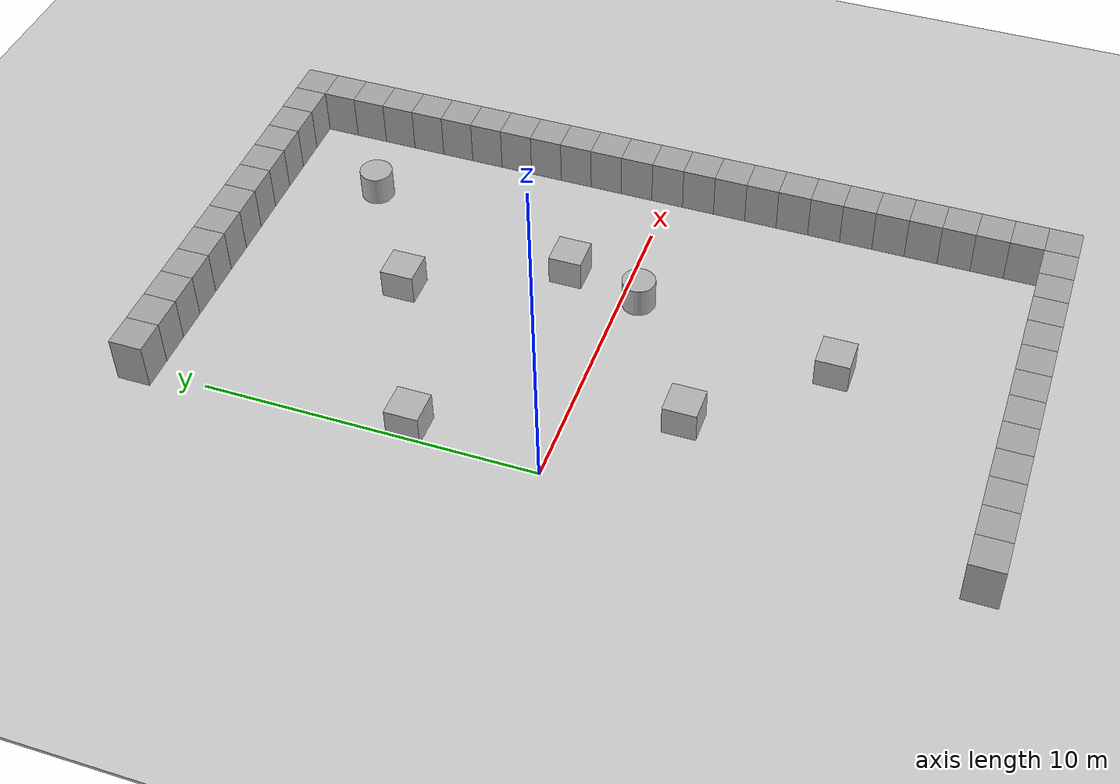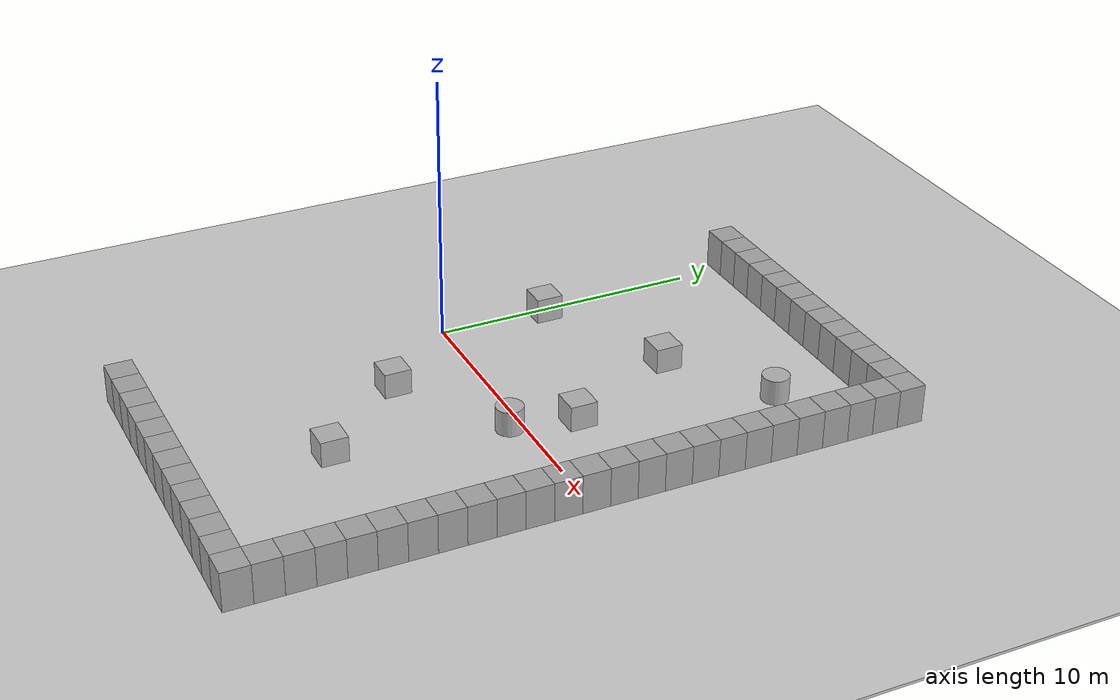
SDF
<sdf version="1.10">
 <world name="empty">
  <model name="ground_plane">
   <static>true</static>
   <link name="link">
    <collision name="collision">
     <geometry><plane><normal>0 0 1</normal><size>100 100</size></plane></geometry>
    </collision>
    <visual name="visual">
     <geometry><plane><normal>0 0 1</normal><size>100 100</size></plane></geometry>
     <material>
      <ambient>0.800000012 0.800000012 0.800000012 1</ambient>
      <diffuse>0.800000012 0.800000012 0.800000012 1</diffuse>
      <specular>0.800000012 0.800000012 0.800000012 1</specular>
     </material>
    </visual>
    <inertial>
     <mass>1</mass>
     <inertia><ixx>1</ixx><ixy>0</ixy><ixz>0</ixz><iyy>1</iyy><iyz>0</iyz><izz>1</izz></inertia>
    </inertial>
   </link>
  </model>
  <model name="box_0">
   <pose>6.0330559122916796 -6.6597615887634198 0.5 0 0 0</pose>
   <link name="box_link">
    <inertial>
     <inertia><ixx>0.16666</ixx><ixy>0</ixy><ixz>0</ixz><iyy>0.16666</iyy><iyz>0</iyz><izz>0.16666</izz></inertia>
     <mass>1</mass>
    </inertial>
    <collision name="box_collision"><geometry><box><size>1 1 1</size></box></geometry></collision>
    <visual name="box_visual">
     <geometry><box><size>1 1 1</size></box></geometry>
     <material>
      <ambient>0.300000012 0.300000012 0.300000012 1</ambient>
      <diffuse>0.699999988 0.699999988 0.699999988 1</diffuse>
      <specular>1 1 1 1</specular>
     </material>
    </visual>
   </link>
   <static>false</static>
  </model>
  <model name="box_1">
   <pose>5.4431378589945663 6.2501473488965873 0.5 0 0 0</pose>
   <link name="box_link">
    <inertial>
     <inertia><ixx>0.16666</ixx><ixy>0</ixy><ixz>0</ixz><iyy>0.16666</iyy><iyz>0</iyz><izz>0.16666</izz></inertia>
     <mass>1</mass>
    </inertial>
    <collision name="box_collision"><geometry><box><size>1 1 1</size></box></geometry></collision>
    <visual name="box_visual">
     <geometry><box><size>1 1 1</size></box></geometry>
     <material>
      <ambient>0.300000012 0.300000012 0.300000012 1</ambient>
      <diffuse>0.699999988 0.699999988 0.699999988 1</diffuse>
      <specular>1 1 1 1</specular>
     </material>
    </visual>
   </link>
   <static>false</static>
  </model>
  <model name="ground_plane_1">
   <static>true</static>
   <link name="link">
    <collision name="collision">
     <geometry><plane><normal>0 0 1</normal><size>100 100</size></plane></geometry>
    </collision>
    <visual name="visual">
     <geometry><plane><normal>0 0 1</normal><size>100 100</size></plane></geometry>
     <material>
      <ambient>0.800000012 0.800000012 0.800000012 1</ambient>
      <diffuse>0.800000012 0.800000012 0.800000012 1</diffuse>
      <specular>0.800000012 0.800000012 0.800000012 1</specular>
     </material>
    </visual>
   </link>
   <pose>5.8856477409981078 6.8674950587699826 0 0 0 0</pose>
  </model>
  <model name="box_1_2">
   <pose>0.41984665652474096 3.952707647567669 0.5 0 0 0</pose>
   <link name="box_link">
    <inertial>
     <inertia><ixx>0.16666</ixx><ixy>0</ixy><ixz>0</ixz><iyy>0.16666</iyy><iyz>0</iyz><izz>0.16666</izz></inertia>
     <mass>1</mass>
    </inertial>
    <collision name="box_collision"><geometry><box><size>1 1 1</size></box></geometry></collision>
    <visual name="box_visual">
     <geometry><box><size>1 1 1</size></box></geometry>
     <material>
      <ambient>0.300000012 0.300000012 0.300000012 1</ambient>
      <diffuse>0.699999988 0.699999988 0.699999988 1</diffuse>
      <specular>1 1 1 1</specular>
     </material>
    </visual>
   </link>
   <static>false</static>
  </model>
  <model name="box_1_3">
   <pose>2.9450058535421952 -3.1553020894889903 0.5 0 0 0</pose>
   <link name="box_link">
    <inertial>
     <inertia><ixx>0.16666</ixx><ixy>0</ixy><ixz>0</ixz><iyy>0.16666</iyy><iyz>0</iyz><izz>0.16666</izz></inertia>
     <mass>1</mass>
    </inertial>
    <collision name="box_collision"><geometry><box><size>1 1 1</size></box></geometry></collision>
    <visual name="box_visual">
     <geometry><box><size>1 1 1</size></box></geometry>
     <material>
      <ambient>0.300000012 0.300000012 0.300000012 1</ambient>
      <diffuse>0.699999988 0.699999988 0.699999988 1</diffuse>
      <specular>1 1 1 1</specular>
     </material>
    </visual>
   </link>
   <static>false</static>
  </model>
  <model name="box_1_6">
   <pose>7.5589287411919539 1.7904647676761927 0.5 0 0 0</pose>
   <link name="box_link">
    <inertial>
     <inertia><ixx>0.16666</ixx><ixy>0</ixy><ixz>0</ixz><iyy>0.16666</iyy><iyz>0</iyz><izz>0.16666</izz></inertia>
     <mass>1</mass>
    </inertial>
    <collision name="box_collision"><geometry><box><size>1 1 1</size></box></geometry></collision>
    <visual name="box_visual">
     <geometry><box><size>1 1 1</size></box></geometry>
     <material>
      <ambient>0.300000012 0.300000012 0.300000012 1</ambient>
      <diffuse>0.699999988 0.699999988 0.699999988 1</diffuse>
      <specular>1 1 1 1</specular>
     </material>
    </visual>
   </link>
   <static>false</static>
  </model>
  <model name="cylinder_4">
   <pose>9.0908475155126158 8.7140515046431091 0.5 0 0 0</pose>
   <link name="cylinder_link">
    <inertial>
     <inertia>
      <ixx>0.14580000000000001</ixx>
      <ixy>0</ixy>
      <ixz>0</ixz>
      <iyy>0.14580000000000001</iyy>
      <iyz>0</iyz>
      <izz>0.125</izz>
     </inertia>
     <mass>1</mass>
    </inertial>
    <collision name="cylinder_collision">
     <geometry><cylinder><radius>0.5</radius><length>1</length></cylinder></geometry>
    </collision>
    <visual name="cylinder_visual">
     <geometry><cylinder><radius>0.5</radius><length>1</length></cylinder></geometry>
     <material>
      <ambient>0.300000012 0.300000012 0.300000012 1</ambient>
      <diffuse>0.699999988 0.699999988 0.699999988 1</diffuse>
      <specular>1 1 1 1</specular>
     </material>
    </visual>
   </link>
   <static>false</static>
  </model>
  <model name="cylinder_6">
   <pose>7.0176003287278821 -0.52406950820931186 0.5 0 0 0</pose>
   <link name="cylinder_link">
    <inertial>
     <inertia>
      <ixx>0.14580000000000001</ixx>
      <ixy>0</ixy>
      <ixz>0</ixz>
      <iyy>0.14580000000000001</iyy>
      <iyz>0</iyz>
      <izz>0.125</izz>
     </inertia>
     <mass>1</mass>
    </inertial>
    <collision name="cylinder_collision">
     <geometry><cylinder><radius>0.5</radius><length>1</length></cylinder></geometry>
    </collision>
    <visual name="cylinder_visual">
     <geometry><cylinder><radius>0.5</radius><length>1</length></cylinder></geometry>
     <material>
      <ambient>0.300000012 0.300000012 0.300000012 1</ambient>
      <diffuse>0.699999988 0.699999988 0.699999988 1</diffuse>
      <specular>1 1 1 1</specular>
     </material>
    </visual>
   </link>
   <static>false</static>
  </model>
  <model name="wall_box_47">
   <static>true</static>
   <pose>0.0 -12.0 0.75 0 0 0</pose>
   <link name="link">
    <collision name="collision"><geometry><box><size>1.0 1.0 1.5</size></box></geometry></collision>
    <visual name="visual">
     <geometry><box><size>1.0 1.0 1.5</size></box></geometry>
     <material>
      <ambient>0.55 0.55 0.55 1</ambient>
      <diffuse>0.65 0.65 0.65 1</diffuse>
      <specular>0.3 0.3 0.3 1</specular>
     </material>
    </visual>
   </link>
  </model>
  <model name="wall_box_48">
   <static>true</static>
   <pose>0.0 12.0 0.75 0 0 0</pose>
   <link name="link">
    <collision name="collision"><geometry><box><size>1.0 1.0 1.5</size></box></geometry></collision>
    <visual name="visual">
     <geometry><box><size>1.0 1.0 1.5</size></box></geometry>
     <material>
      <ambient>0.55 0.55 0.55 1</ambient>
      <diffuse>0.65 0.65 0.65 1</diffuse>
      <specular>0.3 0.3 0.3 1</specular>
     </material>
    </visual>
   </link>
  </model>
  <model name="wall_box_49">
   <static>true</static>
   <pose>1.0 -12.0 0.75 0 0 0</pose>
   <link name="link">
    <collision name="collision"><geometry><box><size>1.0 1.0 1.5</size></box></geometry></collision>
    <visual name="visual">
     <geometry><box><size>1.0 1.0 1.5</size></box></geometry>
     <material>
      <ambient>0.55 0.55 0.55 1</ambient>
      <diffuse>0.65 0.65 0.65 1</diffuse>
      <specular>0.3 0.3 0.3 1</specular>
     </material>
    </visual>
   </link>
  </model>
  <model name="wall_box_50">
   <static>true</static>
   <pose>1.0 12.0 0.75 0 0 0</pose>
   <link name="link">
    <collision name="collision"><geometry><box><size>1.0 1.0 1.5</size></box></geometry></collision>
    <visual name="visual">
     <geometry><box><size>1.0 1.0 1.5</size></box></geometry>
     <material>
      <ambient>0.55 0.55 0.55 1</ambient>
      <diffuse>0.65 0.65 0.65 1</diffuse>
      <specular>0.3 0.3 0.3 1</specular>
     </material>
    </visual>
   </link>
  </model>
  <model name="wall_box_51">
   <static>true</static>
   <pose>2.0 -12.0 0.75 0 0 0</pose>
   <link name="link">
    <collision name="collision"><geometry><box><size>1.0 1.0 1.5</size></box></geometry></collision>
    <visual name="visual">
     <geometry><box><size>1.0 1.0 1.5</size></box></geometry>
     <material>
      <ambient>0.55 0.55 0.55 1</ambient>
      <diffuse>0.65 0.65 0.65 1</diffuse>
      <specular>0.3 0.3 0.3 1</specular>
     </material>
    </visual>
   </link>
  </model>
  <model name="wall_box_52">
   <static>true</static>
   <pose>2.0 12.0 0.75 0 0 0</pose>
   <link name="link">
    <collision name="collision"><geometry><box><size>1.0 1.0 1.5</size></box></geometry></collision>
    <visual name="visual">
     <geometry><box><size>1.0 1.0 1.5</size></box></geometry>
     <material>
      <ambient>0.55 0.55 0.55 1</ambient>
      <diffuse>0.65 0.65 0.65 1</diffuse>
      <specular>0.3 0.3 0.3 1</specular>
     </material>
    </visual>
   </link>
  </model>
  <model name="wall_box_53">
   <static>true</static>
   <pose>3.0 -12.0 0.75 0 0 0</pose>
   <link name="link">
    <collision name="collision"><geometry><box><size>1.0 1.0 1.5</size></box></geometry></collision>
    <visual name="visual">
     <geometry><box><size>1.0 1.0 1.5</size></box></geometry>
     <material>
      <ambient>0.55 0.55 0.55 1</ambient>
      <diffuse>0.65 0.65 0.65 1</diffuse>
      <specular>0.3 0.3 0.3 1</specular>
     </material>
    </visual>
   </link>
  </model>
  <model name="wall_box_54">
   <static>true</static>
   <pose>3.0 12.0 0.75 0 0 0</pose>
   <link name="link">
    <collision name="collision"><geometry><box><size>1.0 1.0 1.5</size></box></geometry></collision>
    <visual name="visual">
     <geometry><box><size>1.0 1.0 1.5</size></box></geometry>
     <material>
      <ambient>0.55 0.55 0.55 1</ambient>
      <diffuse>0.65 0.65 0.65 1</diffuse>
      <specular>0.3 0.3 0.3 1</specular>
     </material>
    </visual>
   </link>
  </model>
  <model name="wall_box_55">
   <static>true</static>
   <pose>4.0 -12.0 0.75 0 0 0</pose>
   <link name="link">
    <collision name="collision"><geometry><box><size>1.0 1.0 1.5</size></box></geometry></collision>
    <visual name="visual">
     <geometry><box><size>1.0 1.0 1.5</size></box></geometry>
     <material>
      <ambient>0.55 0.55 0.55 1</ambient>
      <diffuse>0.65 0.65 0.65 1</diffuse>
      <specular>0.3 0.3 0.3 1</specular>
     </material>
    </visual>
   </link>
  </model>
  <model name="wall_box_56">
   <static>true</static>
   <pose>4.0 12.0 0.75 0 0 0</pose>
   <link name="link">
    <collision name="collision"><geometry><box><size>1.0 1.0 1.5</size></box></geometry></collision>
    <visual name="visual">
     <geometry><box><size>1.0 1.0 1.5</size></box></geometry>
     <material>
      <ambient>0.55 0.55 0.55 1</ambient>
      <diffuse>0.65 0.65 0.65 1</diffuse>
      <specular>0.3 0.3 0.3 1</specular>
     </material>
    </visual>
   </link>
  </model>
  <model name="wall_box_57">
   <static>true</static>
   <pose>5.0 -12.0 0.75 0 0 0</pose>
   <link name="link">
    <collision name="collision"><geometry><box><size>1.0 1.0 1.5</size></box></geometry></collision>
    <visual name="visual">
     <geometry><box><size>1.0 1.0 1.5</size></box></geometry>
     <material>
      <ambient>0.55 0.55 0.55 1</ambient>
      <diffuse>0.65 0.65 0.65 1</diffuse>
      <specular>0.3 0.3 0.3 1</specular>
     </material>
    </visual>
   </link>
  </model>
  <model name="wall_box_58">
   <static>true</static>
   <pose>5.0 12.0 0.75 0 0 0</pose>
   <link name="link">
    <collision name="collision"><geometry><box><size>1.0 1.0 1.5</size></box></geometry></collision>
    <visual name="visual">
     <geometry><box><size>1.0 1.0 1.5</size></box></geometry>
     <material>
      <ambient>0.55 0.55 0.55 1</ambient>
      <diffuse>0.65 0.65 0.65 1</diffuse>
      <specular>0.3 0.3 0.3 1</specular>
     </material>
    </visual>
   </link>
  </model>
  <model name="wall_box_59">
   <static>true</static>
   <pose>6.0 -12.0 0.75 0 0 0</pose>
   <link name="link">
    <collision name="collision"><geometry><box><size>1.0 1.0 1.5</size></box></geometry></collision>
    <visual name="visual">
     <geometry><box><size>1.0 1.0 1.5</size></box></geometry>
     <material>
      <ambient>0.55 0.55 0.55 1</ambient>
      <diffuse>0.65 0.65 0.65 1</diffuse>
      <specular>0.3 0.3 0.3 1</specular>
     </material>
    </visual>
   </link>
  </model>
  <model name="wall_box_60">
   <static>true</static>
   <pose>6.0 12.0 0.75 0 0 0</pose>
   <link name="link">
    <collision name="collision"><geometry><box><size>1.0 1.0 1.5</size></box></geometry></collision>
    <visual name="visual">
     <geometry><box><size>1.0 1.0 1.5</size></box></geometry>
     <material>
      <ambient>0.55 0.55 0.55 1</ambient>
      <diffuse>0.65 0.65 0.65 1</diffuse>
      <specular>0.3 0.3 0.3 1</specular>
     </material>
    </visual>
   </link>
  </model>
  <model name="wall_box_61">
   <static>true</static>
   <pose>7.0 -12.0 0.75 0 0 0</pose>
   <link name="link">
    <collision name="collision"><geometry><box><size>1.0 1.0 1.5</size></box></geometry></collision>
    <visual name="visual">
     <geometry><box><size>1.0 1.0 1.5</size></box></geometry>
     <material>
      <ambient>0.55 0.55 0.55 1</ambient>
      <diffuse>0.65 0.65 0.65 1</diffuse>
      <specular>0.3 0.3 0.3 1</specular>
     </material>
    </visual>
   </link>
  </model>
  <model name="wall_box_62">
   <static>true</static>
   <pose>7.0 12.0 0.75 0 0 0</pose>
   <link name="link">
    <collision name="collision"><geometry><box><size>1.0 1.0 1.5</size></box></geometry></collision>
    <visual name="visual">
     <geometry><box><size>1.0 1.0 1.5</size></box></geometry>
     <material>
      <ambient>0.55 0.55 0.55 1</ambient>
      <diffuse>0.65 0.65 0.65 1</diffuse>
      <specular>0.3 0.3 0.3 1</specular>
     </material>
    </visual>
   </link>
  </model>
  <model name="wall_box_63">
   <static>true</static>
   <pose>8.0 -12.0 0.75 0 0 0</pose>
   <link name="link">
    <collision name="collision"><geometry><box><size>1.0 1.0 1.5</size></box></geometry></collision>
    <visual name="visual">
     <geometry><box><size>1.0 1.0 1.5</size></box></geometry>
     <material>
      <ambient>0.55 0.55 0.55 1</ambient>
      <diffuse>0.65 0.65 0.65 1</diffuse>
      <specular>0.3 0.3 0.3 1</specular>
     </material>
    </visual>
   </link>
  </model>
  <model name="wall_box_64">
   <static>true</static>
   <pose>8.0 12.0 0.75 0 0 0</pose>
   <link name="link">
    <collision name="collision"><geometry><box><size>1.0 1.0 1.5</size></box></geometry></collision>
    <visual name="visual">
     <geometry><box><size>1.0 1.0 1.5</size></box></geometry>
     <material>
      <ambient>0.55 0.55 0.55 1</ambient>
      <diffuse>0.65 0.65 0.65 1</diffuse>
      <specular>0.3 0.3 0.3 1</specular>
     </material>
    </visual>
   </link>
  </model>
  <model name="wall_box_65">
   <static>true</static>
   <pose>9.0 -12.0 0.75 0 0 0</pose>
   <link name="link">
    <collision name="collision"><geometry><box><size>1.0 1.0 1.5</size></box></geometry></collision>
    <visual name="visual">
     <geometry><box><size>1.0 1.0 1.5</size></box></geometry>
     <material>
      <ambient>0.55 0.55 0.55 1</ambient>
      <diffuse>0.65 0.65 0.65 1</diffuse>
      <specular>0.3 0.3 0.3 1</specular>
     </material>
    </visual>
   </link>
  </model>
  <model name="wall_box_66">
   <static>true</static>
   <pose>9.0 12.0 0.75 0 0 0</pose>
   <link name="link">
    <collision name="collision"><geometry><box><size>1.0 1.0 1.5</size></box></geometry></collision>
    <visual name="visual">
     <geometry><box><size>1.0 1.0 1.5</size></box></geometry>
     <material>
      <ambient>0.55 0.55 0.55 1</ambient>
      <diffuse>0.65 0.65 0.65 1</diffuse>
      <specular>0.3 0.3 0.3 1</specular>
     </material>
    </visual>
   </link>
  </model>
  <model name="wall_box_67">
   <static>true</static>
   <pose>10.0 -12.0 0.75 0 0 0</pose>
   <link name="link">
    <collision name="collision"><geometry><box><size>1.0 1.0 1.5</size></box></geometry></collision>
    <visual name="visual">
     <geometry><box><size>1.0 1.0 1.5</size></box></geometry>
     <material>
      <ambient>0.55 0.55 0.55 1</ambient>
      <diffuse>0.65 0.65 0.65 1</diffuse>
      <specular>0.3 0.3 0.3 1</specular>
     </material>
    </visual>
   </link>
  </model>
  <model name="wall_box_68">
   <static>true</static>
   <pose>10.0 12.0 0.75 0 0 0</pose>
   <link name="link">
    <collision name="collision"><geometry><box><size>1.0 1.0 1.5</size></box></geometry></collision>
    <visual name="visual">
     <geometry><box><size>1.0 1.0 1.5</size></box></geometry>
     <material>
      <ambient>0.55 0.55 0.55 1</ambient>
      <diffuse>0.65 0.65 0.65 1</diffuse>
      <specular>0.3 0.3 0.3 1</specular>
     </material>
    </visual>
   </link>
  </model>
  <model name="wall_box_69">
   <static>true</static>
   <pose>11.0 -12.0 0.75 0 0 0</pose>
   <link name="link">
    <collision name="collision"><geometry><box><size>1.0 1.0 1.5</size></box></geometry></collision>
    <visual name="visual">
     <geometry><box><size>1.0 1.0 1.5</size></box></geometry>
     <material>
      <ambient>0.55 0.55 0.55 1</ambient>
      <diffuse>0.65 0.65 0.65 1</diffuse>
      <specular>0.3 0.3 0.3 1</specular>
     </material>
    </visual>
   </link>
  </model>
  <model name="wall_box_70">
   <static>true</static>
   <pose>11.0 12.0 0.75 0 0 0</pose>
   <link name="link">
    <collision name="collision"><geometry><box><size>1.0 1.0 1.5</size></box></geometry></collision>
    <visual name="visual">
     <geometry><box><size>1.0 1.0 1.5</size></box></geometry>
     <material>
      <ambient>0.55 0.55 0.55 1</ambient>
      <diffuse>0.65 0.65 0.65 1</diffuse>
      <specular>0.3 0.3 0.3 1</specular>
     </material>
    </visual>
   </link>
  </model>
  <model name="wall_box_71">
   <static>true</static>
   <pose>12.0 -12.0 0.75 0 0 0</pose>
   <link name="link">
    <collision name="collision"><geometry><box><size>1.0 1.0 1.5</size></box></geometry></collision>
    <visual name="visual">
     <geometry><box><size>1.0 1.0 1.5</size></box></geometry>
     <material>
      <ambient>0.55 0.55 0.55 1</ambient>
      <diffuse>0.65 0.65 0.65 1</diffuse>
      <specular>0.3 0.3 0.3 1</specular>
     </material>
    </visual>
   </link>
  </model>
  <model name="wall_box_72">
   <static>true</static>
   <pose>12.0 -11.0 0.75 0 0 0</pose>
   <link name="link">
    <collision name="collision"><geometry><box><size>1.0 1.0 1.5</size></box></geometry></collision>
    <visual name="visual">
     <geometry><box><size>1.0 1.0 1.5</size></box></geometry>
     <material>
      <ambient>0.55 0.55 0.55 1</ambient>
      <diffuse>0.65 0.65 0.65 1</diffuse>
      <specular>0.3 0.3 0.3 1</specular>
     </material>
    </visual>
   </link>
  </model>
  <model name="wall_box_73">
   <static>true</static>
   <pose>12.0 -10.0 0.75 0 0 0</pose>
   <link name="link">
    <collision name="collision"><geometry><box><size>1.0 1.0 1.5</size></box></geometry></collision>
    <visual name="visual">
     <geometry><box><size>1.0 1.0 1.5</size></box></geometry>
     <material>
      <ambient>0.55 0.55 0.55 1</ambient>
      <diffuse>0.65 0.65 0.65 1</diffuse>
      <specular>0.3 0.3 0.3 1</specular>
     </material>
    </visual>
   </link>
  </model>
  <model name="wall_box_74">
   <static>true</static>
   <pose>12.0 -9.0 0.75 0 0 0</pose>
   <link name="link">
    <collision name="collision"><geometry><box><size>1.0 1.0 1.5</size></box></geometry></collision>
    <visual name="visual">
     <geometry><box><size>1.0 1.0 1.5</size></box></geometry>
     <material>
      <ambient>0.55 0.55 0.55 1</ambient>
      <diffuse>0.65 0.65 0.65 1</diffuse>
      <specular>0.3 0.3 0.3 1</specular>
     </material>
    </visual>
   </link>
  </model>
  <model name="wall_box_75">
   <static>true</static>
   <pose>12.0 -8.0 0.75 0 0 0</pose>
   <link name="link">
    <collision name="collision"><geometry><box><size>1.0 1.0 1.5</size></box></geometry></collision>
    <visual name="visual">
     <geometry><box><size>1.0 1.0 1.5</size></box></geometry>
     <material>
      <ambient>0.55 0.55 0.55 1</ambient>
      <diffuse>0.65 0.65 0.65 1</diffuse>
      <specular>0.3 0.3 0.3 1</specular>
     </material>
    </visual>
   </link>
  </model>
  <model name="wall_box_76">
   <static>true</static>
   <pose>12.0 -7.0 0.75 0 0 0</pose>
   <link name="link">
    <collision name="collision"><geometry><box><size>1.0 1.0 1.5</size></box></geometry></collision>
    <visual name="visual">
     <geometry><box><size>1.0 1.0 1.5</size></box></geometry>
     <material>
      <ambient>0.55 0.55 0.55 1</ambient>
      <diffuse>0.65 0.65 0.65 1</diffuse>
      <specular>0.3 0.3 0.3 1</specular>
     </material>
    </visual>
   </link>
  </model>
  <model name="wall_box_77">
   <static>true</static>
   <pose>12.0 -6.0 0.75 0 0 0</pose>
   <link name="link">
    <collision name="collision"><geometry><box><size>1.0 1.0 1.5</size></box></geometry></collision>
    <visual name="visual">
     <geometry><box><size>1.0 1.0 1.5</size></box></geometry>
     <material>
      <ambient>0.55 0.55 0.55 1</ambient>
      <diffuse>0.65 0.65 0.65 1</diffuse>
      <specular>0.3 0.3 0.3 1</specular>
     </material>
    </visual>
   </link>
  </model>
  <model name="wall_box_78">
   <static>true</static>
   <pose>12.0 -5.0 0.75 0 0 0</pose>
   <link name="link">
    <collision name="collision"><geometry><box><size>1.0 1.0 1.5</size></box></geometry></collision>
    <visual name="visual">
     <geometry><box><size>1.0 1.0 1.5</size></box></geometry>
     <material>
      <ambient>0.55 0.55 0.55 1</ambient>
      <diffuse>0.65 0.65 0.65 1</diffuse>
      <specular>0.3 0.3 0.3 1</specular>
     </material>
    </visual>
   </link>
  </model>
  <model name="wall_box_79">
   <static>true</static>
   <pose>12.0 -4.0 0.75 0 0 0</pose>
   <link name="link">
    <collision name="collision"><geometry><box><size>1.0 1.0 1.5</size></box></geometry></collision>
    <visual name="visual">
     <geometry><box><size>1.0 1.0 1.5</size></box></geometry>
     <material>
      <ambient>0.55 0.55 0.55 1</ambient>
      <diffuse>0.65 0.65 0.65 1</diffuse>
      <specular>0.3 0.3 0.3 1</specular>
     </material>
    </visual>
   </link>
  </model>
  <model name="wall_box_80">
   <static>true</static>
   <pose>12.0 -3.0 0.75 0 0 0</pose>
   <link name="link">
    <collision name="collision"><geometry><box><size>1.0 1.0 1.5</size></box></geometry></collision>
    <visual name="visual">
     <geometry><box><size>1.0 1.0 1.5</size></box></geometry>
     <material>
      <ambient>0.55 0.55 0.55 1</ambient>
      <diffuse>0.65 0.65 0.65 1</diffuse>
      <specular>0.3 0.3 0.3 1</specular>
     </material>
    </visual>
   </link>
  </model>
  <model name="wall_box_81">
   <static>true</static>
   <pose>12.0 -2.0 0.75 0 0 0</pose>
   <link name="link">
    <collision name="collision"><geometry><box><size>1.0 1.0 1.5</size></box></geometry></collision>
    <visual name="visual">
     <geometry><box><size>1.0 1.0 1.5</size></box></geometry>
     <material>
      <ambient>0.55 0.55 0.55 1</ambient>
      <diffuse>0.65 0.65 0.65 1</diffuse>
      <specular>0.3 0.3 0.3 1</specular>
     </material>
    </visual>
   </link>
  </model>
  <model name="wall_box_82">
   <static>true</static>
   <pose>12.0 -1.0 0.75 0 0 0</pose>
   <link name="link">
    <collision name="collision"><geometry><box><size>1.0 1.0 1.5</size></box></geometry></collision>
    <visual name="visual">
     <geometry><box><size>1.0 1.0 1.5</size></box></geometry>
     <material>
      <ambient>0.55 0.55 0.55 1</ambient>
      <diffuse>0.65 0.65 0.65 1</diffuse>
      <specular>0.3 0.3 0.3 1</specular>
     </material>
    </visual>
   </link>
  </model>
  <model name="wall_box_83">
   <static>true</static>
   <pose>12.0 0.0 0.75 0 0 0</pose>
   <link name="link">
    <collision name="collision"><geometry><box><size>1.0 1.0 1.5</size></box></geometry></collision>
    <visual name="visual">
     <geometry><box><size>1.0 1.0 1.5</size></box></geometry>
     <material>
      <ambient>0.55 0.55 0.55 1</ambient>
      <diffuse>0.65 0.65 0.65 1</diffuse>
      <specular>0.3 0.3 0.3 1</specular>
     </material>
    </visual>
   </link>
  </model>
  <model name="wall_box_84">
   <static>true</static>
   <pose>12.0 1.0 0.75 0 0 0</pose>
   <link name="link">
    <collision name="collision"><geometry><box><size>1.0 1.0 1.5</size></box></geometry></collision>
    <visual name="visual">
     <geometry><box><size>1.0 1.0 1.5</size></box></geometry>
     <material>
      <ambient>0.55 0.55 0.55 1</ambient>
      <diffuse>0.65 0.65 0.65 1</diffuse>
      <specular>0.3 0.3 0.3 1</specular>
     </material>
    </visual>
   </link>
  </model>
  <model name="wall_box_85">
   <static>true</static>
   <pose>12.0 2.0 0.75 0 0 0</pose>
   <link name="link">
    <collision name="collision"><geometry><box><size>1.0 1.0 1.5</size></box></geometry></collision>
    <visual name="visual">
     <geometry><box><size>1.0 1.0 1.5</size></box></geometry>
     <material>
      <ambient>0.55 0.55 0.55 1</ambient>
      <diffuse>0.65 0.65 0.65 1</diffuse>
      <specular>0.3 0.3 0.3 1</specular>
     </material>
    </visual>
   </link>
  </model>
  <model name="wall_box_86">
   <static>true</static>
   <pose>12.0 3.0 0.75 0 0 0</pose>
   <link name="link">
    <collision name="collision"><geometry><box><size>1.0 1.0 1.5</size></box></geometry></collision>
    <visual name="visual">
     <geometry><box><size>1.0 1.0 1.5</size></box></geometry>
     <material>
      <ambient>0.55 0.55 0.55 1</ambient>
      <diffuse>0.65 0.65 0.65 1</diffuse>
      <specular>0.3 0.3 0.3 1</specular>
     </material>
    </visual>
   </link>
  </model>
  <model name="wall_box_87">
   <static>true</static>
   <pose>12.0 4.0 0.75 0 0 0</pose>
   <link name="link">
    <collision name="collision"><geometry><box><size>1.0 1.0 1.5</size></box></geometry></collision>
    <visual name="visual">
     <geometry><box><size>1.0 1.0 1.5</size></box></geometry>
     <material>
      <ambient>0.55 0.55 0.55 1</ambient>
      <diffuse>0.65 0.65 0.65 1</diffuse>
      <specular>0.3 0.3 0.3 1</specular>
     </material>
    </visual>
   </link>
  </model>
  <model name="wall_box_88">
   <static>true</static>
   <pose>12.0 5.0 0.75 0 0 0</pose>
   <link name="link">
    <collision name="collision"><geometry><box><size>1.0 1.0 1.5</size></box></geometry></collision>
    <visual name="visual">
     <geometry><box><size>1.0 1.0 1.5</size></box></geometry>
     <material>
      <ambient>0.55 0.55 0.55 1</ambient>
      <diffuse>0.65 0.65 0.65 1</diffuse>
      <specular>0.3 0.3 0.3 1</specular>
     </material>
    </visual>
   </link>
  </model>
  <model name="wall_box_89">
   <static>true</static>
   <pose>12.0 6.0 0.75 0 0 0</pose>
   <link name="link">
    <collision name="collision"><geometry><box><size>1.0 1.0 1.5</size></box></geometry></collision>
    <visual name="visual">
     <geometry><box><size>1.0 1.0 1.5</size></box></geometry>
     <material>
      <ambient>0.55 0.55 0.55 1</ambient>
      <diffuse>0.65 0.65 0.65 1</diffuse>
      <specular>0.3 0.3 0.3 1</specular>
     </material>
    </visual>
   </link>
  </model>
  <model name="wall_box_90">
   <static>true</static>
   <pose>12.0 7.0 0.75 0 0 0</pose>
   <link name="link">
    <collision name="collision"><geometry><box><size>1.0 1.0 1.5</size></box></geometry></collision>
    <visual name="visual">
     <geometry><box><size>1.0 1.0 1.5</size></box></geometry>
     <material>
      <ambient>0.55 0.55 0.55 1</ambient>
      <diffuse>0.65 0.65 0.65 1</diffuse>
      <specular>0.3 0.3 0.3 1</specular>
     </material>
    </visual>
   </link>
  </model>
  <model name="wall_box_91">
   <static>true</static>
   <pose>12.0 8.0 0.75 0 0 0</pose>
   <link name="link">
    <collision name="collision"><geometry><box><size>1.0 1.0 1.5</size></box></geometry></collision>
    <visual name="visual">
     <geometry><box><size>1.0 1.0 1.5</size></box></geometry>
     <material>
      <ambient>0.55 0.55 0.55 1</ambient>
      <diffuse>0.65 0.65 0.65 1</diffuse>
      <specular>0.3 0.3 0.3 1</specular>
     </material>
    </visual>
   </link>
  </model>
  <model name="wall_box_92">
   <static>true</static>
   <pose>12.0 9.0 0.75 0 0 0</pose>
   <link name="link">
    <collision name="collision"><geometry><box><size>1.0 1.0 1.5</size></box></geometry></collision>
    <visual name="visual">
     <geometry><box><size>1.0 1.0 1.5</size></box></geometry>
     <material>
      <ambient>0.55 0.55 0.55 1</ambient>
      <diffuse>0.65 0.65 0.65 1</diffuse>
      <specular>0.3 0.3 0.3 1</specular>
     </material>
    </visual>
   </link>
  </model>
  <model name="wall_box_93">
   <static>true</static>
   <pose>12.0 10.0 0.75 0 0 0</pose>
   <link name="link">
    <collision name="collision"><geometry><box><size>1.0 1.0 1.5</size></box></geometry></collision>
    <visual name="visual">
     <geometry><box><size>1.0 1.0 1.5</size></box></geometry>
     <material>
      <ambient>0.55 0.55 0.55 1</ambient>
      <diffuse>0.65 0.65 0.65 1</diffuse>
      <specular>0.3 0.3 0.3 1</specular>
     </material>
    </visual>
   </link>
  </model>
  <model name="wall_box_94">
   <static>true</static>
   <pose>12.0 11.0 0.75 0 0 0</pose>
   <link name="link">
    <collision name="collision"><geometry><box><size>1.0 1.0 1.5</size></box></geometry></collision>
    <visual name="visual">
     <geometry><box><size>1.0 1.0 1.5</size></box></geometry>
     <material>
      <ambient>0.55 0.55 0.55 1</ambient>
      <diffuse>0.65 0.65 0.65 1</diffuse>
      <specular>0.3 0.3 0.3 1</specular>
     </material>
    </visual>
   </link>
  </model>
  <model name="wall_box_95">
   <static>true</static>
   <pose>12.0 12.0 0.75 0 0 0</pose>
   <link name="link">
    <collision name="collision"><geometry><box><size>1.0 1.0 1.5</size></box></geometry></collision>
    <visual name="visual">
     <geometry><box><size>1.0 1.0 1.5</size></box></geometry>
     <material>
      <ambient>0.55 0.55 0.55 1</ambient>
      <diffuse>0.65 0.65 0.65 1</diffuse>
      <specular>0.3 0.3 0.3 1</specular>
     </material>
    </visual>
   </link>
  </model>
 </world>
</sdf>
